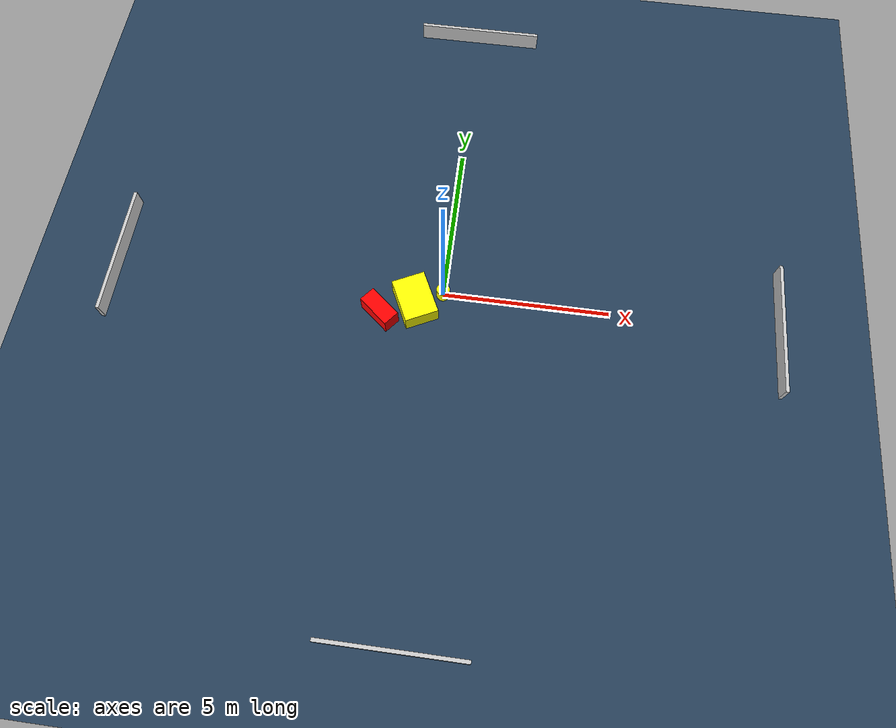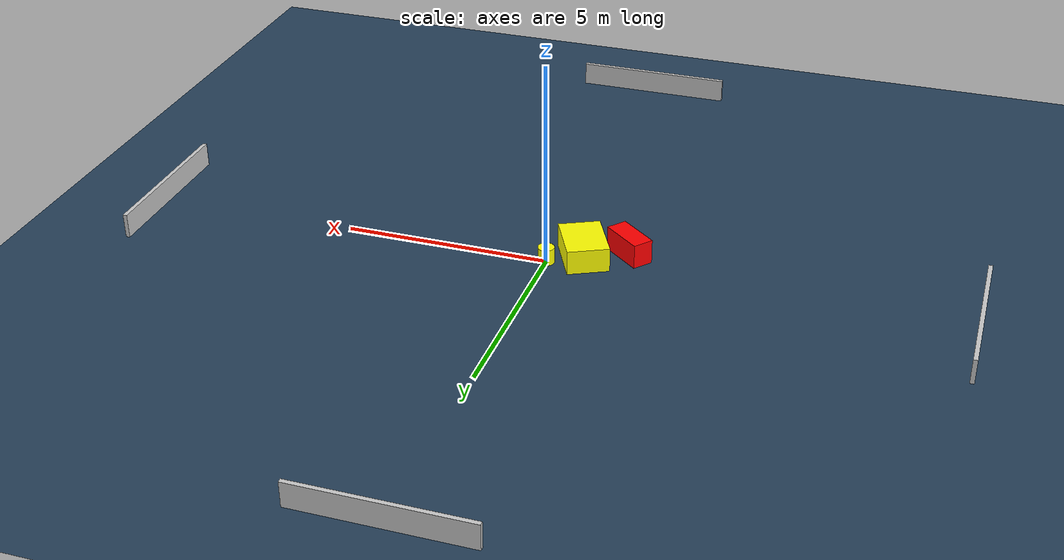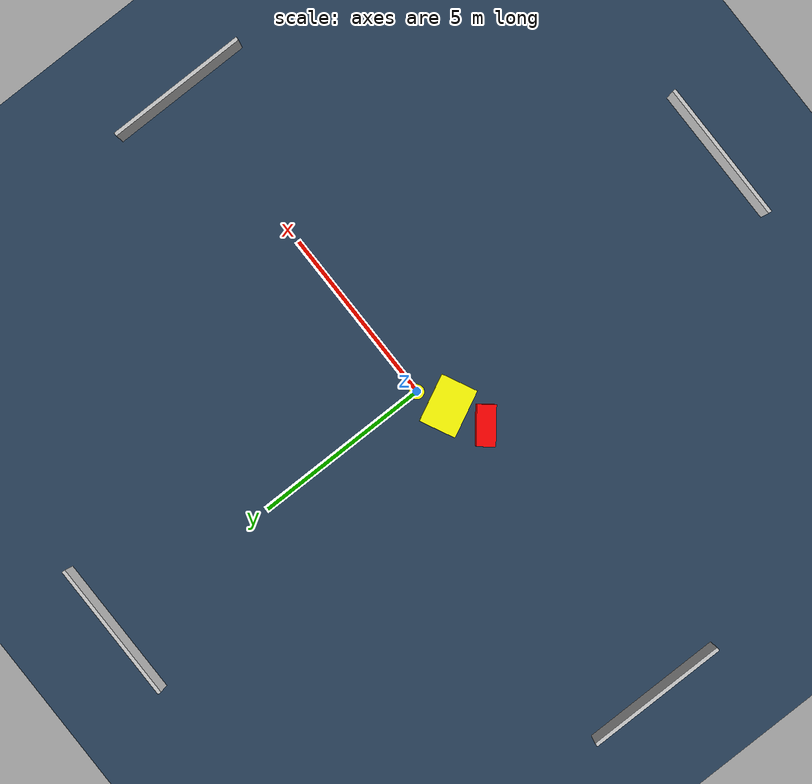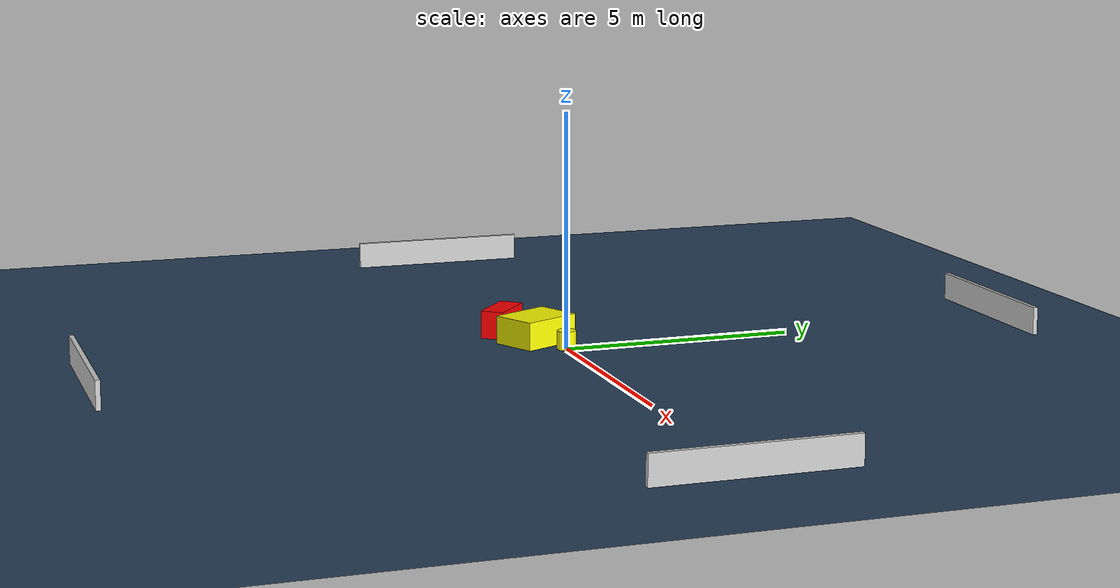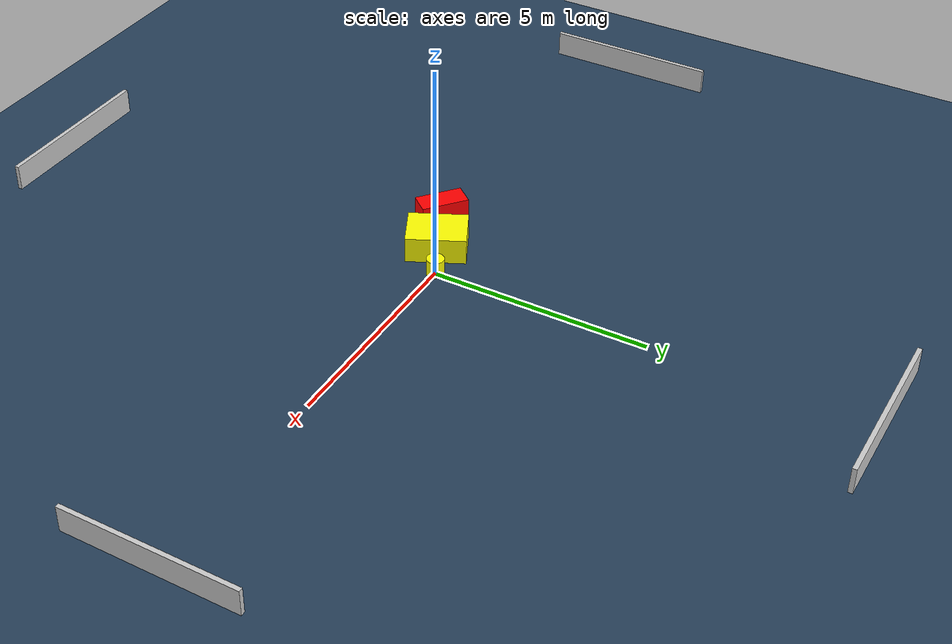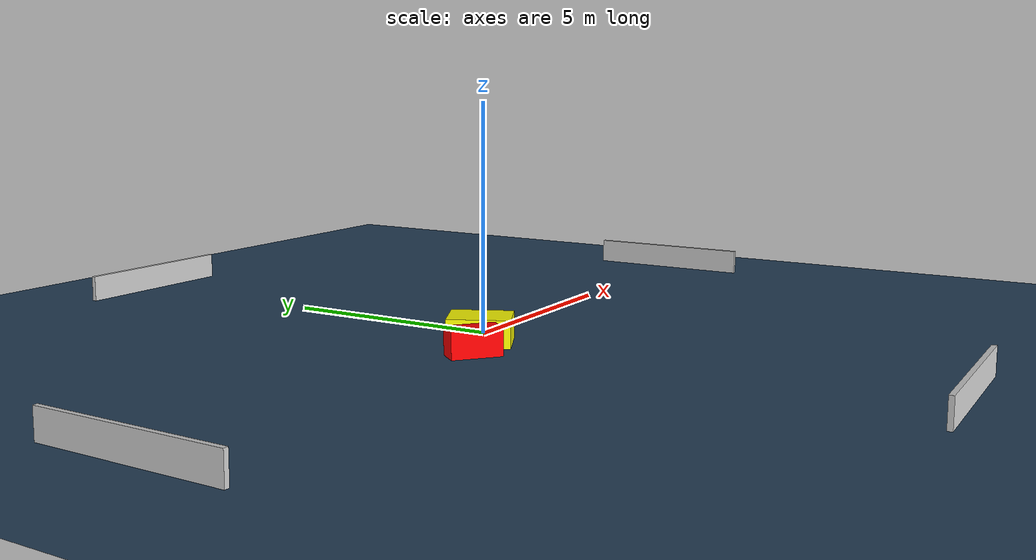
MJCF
<?xml version="1.0" ?>
<mujoco model="generated_environment">
  <option timestep="0.01" integrator="RK4" cone="elliptic"/>
  <default>
    <geom density="1"/>
  </default>
  <asset>
    <texture builtin="gradient" height="3072" name="skybox" rgb1="0.3 0.5 0.7" rgb2="0 0 0" type="skybox" width="512"/>
    <texture builtin="checker" height="300" name="groundplane" rgb1="0.2 0.3 0.4" rgb2="0.1 0.2 0.3" type="2d" width="300"/>
    <material name="groundplane" reflectance="0.2" texrepeat="5 5" texture="groundplane"/>
  </asset>
  <worldbody>
    <light dir="0 0 -1" directional="true" pos="0 0 1.5"/>
    <geom condim="3" friction="0.5 0.005 0.001" material="groundplane" name="floor" pos="0 0 0" size="0 0 0.05" type="plane"/>
    <body name="walls">
      <geom name="wall_1" condim="4" pos="-10.0 0.0 0.3" rgba="0.800000011920929 0.800000011920929 0.800000011920929 1.0" size="0.05 2.0 0.3" type="box"/>
      <geom name="wall_2" condim="4" pos="10.0 0.0 0.3" rgba="0.800000011920929 0.800000011920929 0.800000011920929 1.0" size="0.05 2.0 0.3" type="box"/>
      <geom name="wall_3" condim="4" pos="0.0 -10.0 0.3" rgba="0.800000011920929 0.800000011920929 0.800000011920929 1.0" size="2.0 0.05 0.3" type="box"/>
      <geom name="wall_4" condim="4" pos="0.0 10.0 0.3" rgba="0.800000011920929 0.800000011920929 0.800000011920929 1.0" size="2.0 0.05 0.3" type="box"/>
    </body>
    <body name="robot">
      <joint name="joint_x" type="slide" pos="0 0 0" axis="1 0 0"/>
      <joint name="joint_y" type="slide" pos="0 0 0" axis="0 1 0"/>
      <geom name="robot" type="cylinder" pos="0.0 0.0 0.2" size="0.2 0.2 0.0" mass="5.0" friction="1.0 0.005 0.0001" condim="4" rgba="1.0 1.0 0.0 1.0"/>
    </body>
    <body name="obstacle_1_movable">
      <geom name="obstacle_1_movable" condim="4" pos="-0.7919505231881319 -0.41486763104243185 0.3" euler="0 0 26.21008711782144" friction="0.0 0.005 0.001" rgba="1.0 1.0 0.0 1.0" size="0.5071787345363197 0.6723492559232558 0.3" type="box" mass="0.1"/>
      <joint type="free"/>
    </body>
    <body name="obstacle_2_static">
      <geom name="obstacle_2_static" condim="4" pos="-1.7895836702485448 -0.8689287590139619 0.3" euler="0 0 140.65983027959896" friction="0.0 0.005 0.001" rgba="1.0 0.0 0.0 1.0" size="0.5470166112587473 0.25494525674552526 0.3" type="box"/>
    </body>
  </worldbody>
  <actuator>
    <motor name="actuator_x" joint="joint_x" gear="1" ctrlrange="-1 1"/>
    <motor name="actuator_y" joint="joint_y" gear="1" ctrlrange="-1 1"/>
  </actuator>
</mujoco>
